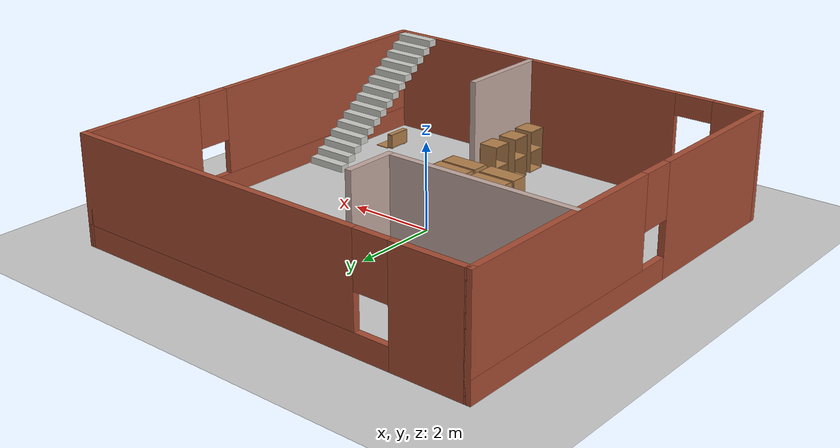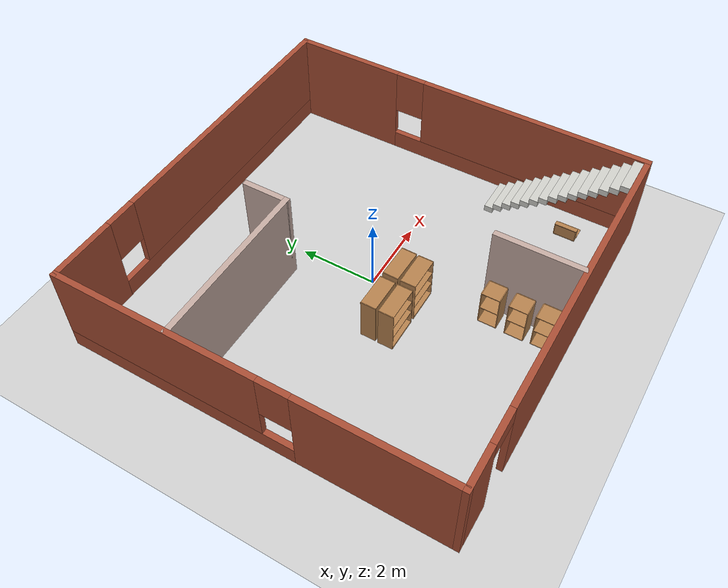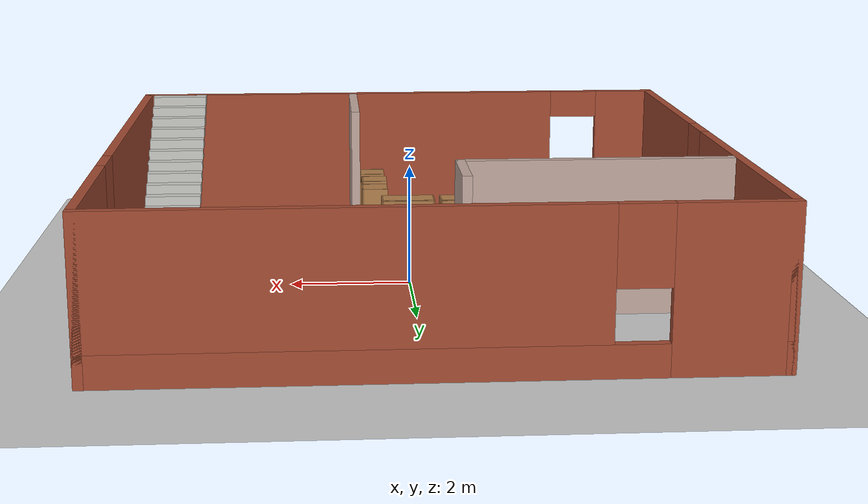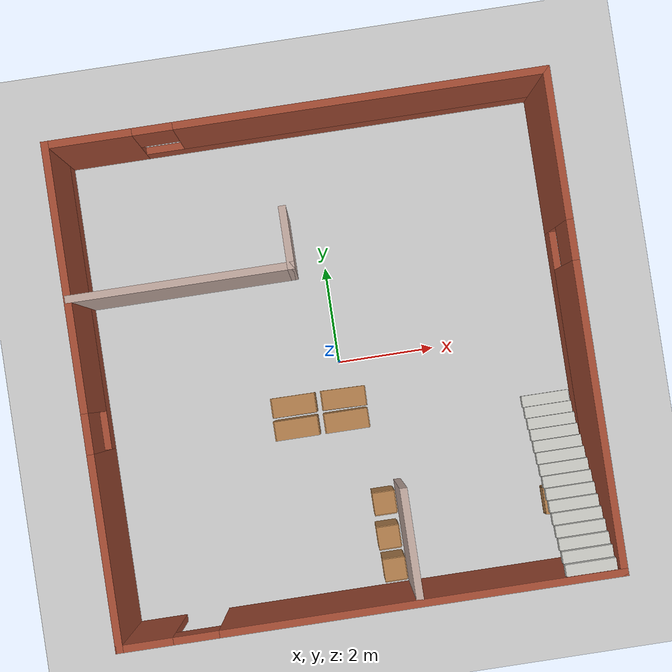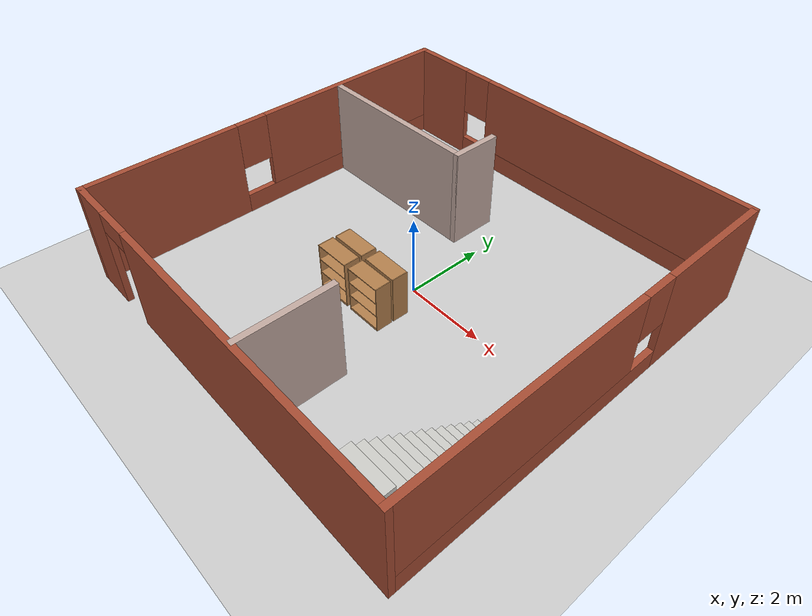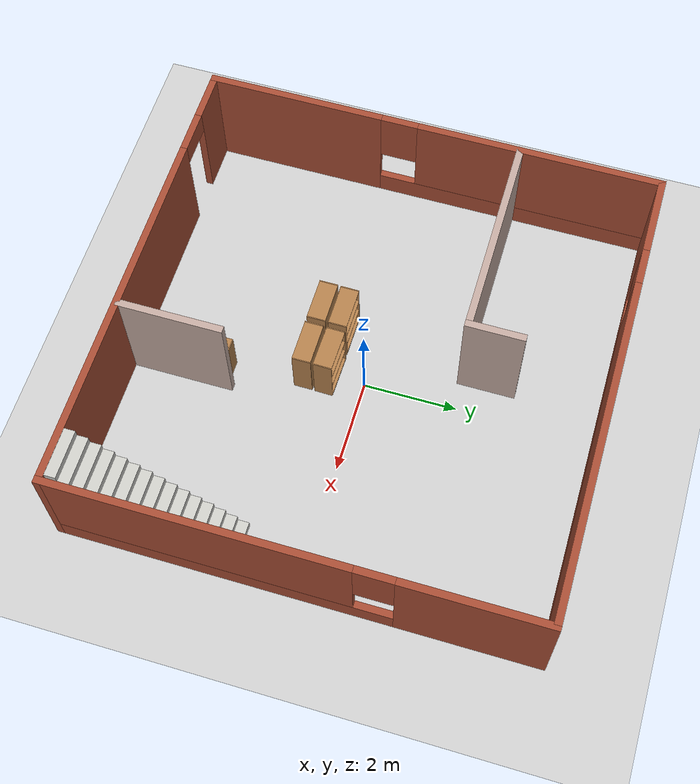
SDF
<sdf version="1.6">
 <world name="default">
  <light name="sun" type="directional">
   <pose>0 0 10 0 -0 0</pose>
   <diffuse>0.8 0.8 0.8 1</diffuse>
   <specular>0.1 0.1 0.1 1</specular>
   <attenuation>
    <range>1000</range>
    <constant>0.9</constant>
    <linear>0.01</linear>
    <quadratic>0.001</quadratic>
   </attenuation>
   <direction>-0.5 0.5 -1</direction>
  </light>
  <model name="ground_plane">
   <static>1</static>
   <link name="link">
    <collision name="collision">
     <geometry><plane><normal>0 0 1</normal><size>100 100</size></plane></geometry>
     <surface><friction><ode><mu>100</mu><mu2>50</mu2></ode></friction></surface>
    </collision>
    <visual name="visual">
     <cast_shadows>0</cast_shadows>
     <geometry><plane><normal>0 0 1</normal><size>100 100</size></plane></geometry>
     <material>
      <script><uri>file://media/materials/scripts/gazebo.material</uri><name>Gazebo/Grey</name></script>
     </material>
    </visual>
   </link>
  </model>
  <gravity>0 0 -9.8</gravity>
  <magnetic_field>6e-06 2.3e-05 -4.2e-05</magnetic_field>
  <atmosphere type="adiabatic"/>
  <physics name="default_physics" default="0" type="ode">
   <max_step_size>0.001</max_step_size>
   <real_time_factor>1</real_time_factor>
   <real_time_update_rate>1000</real_time_update_rate>
  </physics>
  <scene><ambient>0.4 0.4 0.4 1</ambient><background>0.7 0.7 0.7 1</background><shadows>1</shadows></scene>
  <spherical_coordinates>
   <surface_model>EARTH_WGS84</surface_model>
   <latitude_deg>0</latitude_deg>
   <longitude_deg>0</longitude_deg>
   <elevation>0</elevation>
   <heading_deg>0</heading_deg>
  </spherical_coordinates>
  <model name="house2">
   <pose>-0.118115 0.045752 0 0 -0 0</pose>
   <link name="Stairs_0">
    <visual name="Stairs_0_Visual_0">
     <pose>4.30411 -1.46435 0.083333 0 -0 0</pose>
     <geometry><box><size>1 0.233333 0.166667</size></box></geometry>
     <material>
      <script><uri>file://media/materials/scripts/gazebo.material</uri><name>Gazebo/CeilingTiled</name></script>
      <ambient>1 1 1 1</ambient>
     </material>
    </visual>
    <collision name="Stairs_0_Collision_0">
     <geometry><box><size>1 0.233333 0.166667</size></box></geometry>
     <pose>4.30411 -1.46435 0.083333 0 -0 0</pose>
    </collision>
    <visual name="Stairs_0_Visual_1">
     <pose>4.30411 -1.69768 0.25 0 -0 0</pose>
     <geometry><box><size>1 0.233333 0.166667</size></box></geometry>
     <material>
      <script><uri>file://media/materials/scripts/gazebo.material</uri><name>Gazebo/CeilingTiled</name></script>
      <ambient>1 1 1 1</ambient>
     </material>
    </visual>
    <collision name="Stairs_0_Collision_1">
     <geometry><box><size>1 0.233333 0.166667</size></box></geometry>
     <pose>4.30411 -1.69768 0.25 0 -0 0</pose>
    </collision>
    <visual name="Stairs_0_Visual_2">
     <pose>4.30411 -1.93101 0.416667 0 -0 0</pose>
     <geometry><box><size>1 0.233333 0.166667</size></box></geometry>
     <material>
      <script><uri>file://media/materials/scripts/gazebo.material</uri><name>Gazebo/CeilingTiled</name></script>
      <ambient>1 1 1 1</ambient>
     </material>
    </visual>
    <collision name="Stairs_0_Collision_2">
     <geometry><box><size>1 0.233333 0.166667</size></box></geometry>
     <pose>4.30411 -1.93101 0.416667 0 -0 0</pose>
    </collision>
    <visual name="Stairs_0_Visual_3">
     <pose>4.30411 -2.16435 0.583333 0 -0 0</pose>
     <geometry><box><size>1 0.233333 0.166667</size></box></geometry>
     <material>
      <script><uri>file://media/materials/scripts/gazebo.material</uri><name>Gazebo/CeilingTiled</name></script>
      <ambient>1 1 1 1</ambient>
     </material>
    </visual>
    <collision name="Stairs_0_Collision_3">
     <geometry><box><size>1 0.233333 0.166667</size></box></geometry>
     <pose>4.30411 -2.16435 0.583333 0 -0 0</pose>
    </collision>
    <visual name="Stairs_0_Visual_4">
     <pose>4.30411 -2.39768 0.75 0 -0 0</pose>
     <geometry><box><size>1 0.233333 0.166667</size></box></geometry>
     <material>
      <script><uri>file://media/materials/scripts/gazebo.material</uri><name>Gazebo/CeilingTiled</name></script>
      <ambient>1 1 1 1</ambient>
     </material>
    </visual>
    <collision name="Stairs_0_Collision_4">
     <geometry><box><size>1 0.233333 0.166667</size></box></geometry>
     <pose>4.30411 -2.39768 0.75 0 -0 0</pose>
    </collision>
    <visual name="Stairs_0_Visual_5">
     <pose>4.30411 -2.63102 0.916667 0 -0 0</pose>
     <geometry><box><size>1 0.233333 0.166667</size></box></geometry>
     <material>
      <script><uri>file://media/materials/scripts/gazebo.material</uri><name>Gazebo/CeilingTiled</name></script>
      <ambient>1 1 1 1</ambient>
     </material>
    </visual>
    <collision name="Stairs_0_Collision_5">
     <geometry><box><size>1 0.233333 0.166667</size></box></geometry>
     <pose>4.30411 -2.63102 0.916667 0 -0 0</pose>
    </collision>
    <visual name="Stairs_0_Visual_6">
     <pose>4.30411 -2.86435 1.08333 0 -0 0</pose>
     <geometry><box><size>1 0.233333 0.166667</size></box></geometry>
     <material>
      <script><uri>file://media/materials/scripts/gazebo.material</uri><name>Gazebo/CeilingTiled</name></script>
      <ambient>1 1 1 1</ambient>
     </material>
    </visual>
    <collision name="Stairs_0_Collision_6">
     <geometry><box><size>1 0.233333 0.166667</size></box></geometry>
     <pose>4.30411 -2.86435 1.08333 0 -0 0</pose>
    </collision>
    <visual name="Stairs_0_Visual_7">
     <pose>4.30411 -3.09768 1.25 0 -0 0</pose>
     <geometry><box><size>1 0.233333 0.166667</size></box></geometry>
     <material>
      <script><uri>file://media/materials/scripts/gazebo.material</uri><name>Gazebo/CeilingTiled</name></script>
      <ambient>1 1 1 1</ambient>
     </material>
    </visual>
    <collision name="Stairs_0_Collision_7">
     <geometry><box><size>1 0.233333 0.166667</size></box></geometry>
     <pose>4.30411 -3.09768 1.25 0 -0 0</pose>
    </collision>
    <visual name="Stairs_0_Visual_8">
     <pose>4.30411 -3.33102 1.41667 0 -0 0</pose>
     <geometry><box><size>1 0.233333 0.166667</size></box></geometry>
     <material>
      <script><uri>file://media/materials/scripts/gazebo.material</uri><name>Gazebo/CeilingTiled</name></script>
      <ambient>1 1 1 1</ambient>
     </material>
    </visual>
    <collision name="Stairs_0_Collision_8">
     <geometry><box><size>1 0.233333 0.166667</size></box></geometry>
     <pose>4.30411 -3.33102 1.41667 0 -0 0</pose>
    </collision>
    <visual name="Stairs_0_Visual_9">
     <pose>4.30411 -3.56435 1.58333 0 -0 0</pose>
     <geometry><box><size>1 0.233333 0.166667</size></box></geometry>
     <material>
      <script><uri>file://media/materials/scripts/gazebo.material</uri><name>Gazebo/CeilingTiled</name></script>
      <ambient>1 1 1 1</ambient>
     </material>
    </visual>
    <collision name="Stairs_0_Collision_9">
     <geometry><box><size>1 0.233333 0.166667</size></box></geometry>
     <pose>4.30411 -3.56435 1.58333 0 -0 0</pose>
    </collision>
    <visual name="Stairs_0_Visual_10">
     <pose>4.30411 -3.79768 1.75 0 -0 0</pose>
     <geometry><box><size>1 0.233333 0.166667</size></box></geometry>
     <material>
      <script><uri>file://media/materials/scripts/gazebo.material</uri><name>Gazebo/CeilingTiled</name></script>
      <ambient>1 1 1 1</ambient>
     </material>
    </visual>
    <collision name="Stairs_0_Collision_10">
     <geometry><box><size>1 0.233333 0.166667</size></box></geometry>
     <pose>4.30411 -3.79768 1.75 0 -0 0</pose>
    </collision>
    <visual name="Stairs_0_Visual_11">
     <pose>4.30411 -4.03102 1.91667 0 -0 0</pose>
     <geometry><box><size>1 0.233333 0.166667</size></box></geometry>
     <material>
      <script><uri>file://media/materials/scripts/gazebo.material</uri><name>Gazebo/CeilingTiled</name></script>
      <ambient>1 1 1 1</ambient>
     </material>
    </visual>
    <collision name="Stairs_0_Collision_11">
     <geometry><box><size>1 0.233333 0.166667</size></box></geometry>
     <pose>4.30411 -4.03102 1.91667 0 -0 0</pose>
    </collision>
    <visual name="Stairs_0_Visual_12">
     <pose>4.30411 -4.26435 2.08333 0 -0 0</pose>
     <geometry><box><size>1 0.233333 0.166667</size></box></geometry>
     <material>
      <script><uri>file://media/materials/scripts/gazebo.material</uri><name>Gazebo/CeilingTiled</name></script>
      <ambient>1 1 1 1</ambient>
     </material>
    </visual>
    <collision name="Stairs_0_Collision_12">
     <geometry><box><size>1 0.233333 0.166667</size></box></geometry>
     <pose>4.30411 -4.26435 2.08333 0 -0 0</pose>
    </collision>
    <visual name="Stairs_0_Visual_13">
     <pose>4.30411 -4.49768 2.25 0 -0 0</pose>
     <geometry><box><size>1 0.233333 0.166667</size></box></geometry>
     <material>
      <script><uri>file://media/materials/scripts/gazebo.material</uri><name>Gazebo/CeilingTiled</name></script>
      <ambient>1 1 1 1</ambient>
     </material>
    </visual>
    <collision name="Stairs_0_Collision_13">
     <geometry><box><size>1 0.233333 0.166667</size></box></geometry>
     <pose>4.30411 -4.49768 2.25 0 -0 0</pose>
    </collision>
    <visual name="Stairs_0_Visual_14">
     <pose>4.30411 -4.73102 2.41667 0 -0 0</pose>
     <geometry><box><size>1 0.233333 0.166667</size></box></geometry>
     <material>
      <script><uri>file://media/materials/scripts/gazebo.material</uri><name>Gazebo/CeilingTiled</name></script>
      <ambient>1 1 1 1</ambient>
     </material>
    </visual>
    <collision name="Stairs_0_Collision_14">
     <geometry><box><size>1 0.233333 0.166667</size></box></geometry>
     <pose>4.30411 -4.73102 2.41667 0 -0 0</pose>
    </collision>
   </link>
   <link name="Wall_1">
    <pose>-4.925 0 0 0 -0 1.5708</pose>
    <visual name="Wall_1_Visual_0">
     <pose>-3.06918 0 1.25 0 -0 0</pose>
     <geometry><box><size>3.86164 0.15 2.5</size></box></geometry>
     <material>
      <script><uri>file://media/materials/scripts/gazebo.material</uri><name>Gazebo/Bricks</name></script>
      <ambient>1 1 1 1</ambient>
     </material>
    </visual>
    <collision name="Wall_1_Collision_0">
     <geometry><box><size>3.86164 0.15 2.5</size></box></geometry>
     <pose>-3.06918 0 1.25 0 -0 0</pose>
    </collision>
    <visual name="Wall_1_Visual_1">
     <pose>1.93082 0 0.25 0 -0 0</pose>
     <geometry><box><size>6.13836 0.15 0.5</size></box></geometry>
     <material>
      <script><uri>file://media/materials/scripts/gazebo.material</uri><name>Gazebo/Bricks</name></script>
      <ambient>1 1 1 1</ambient>
     </material>
    </visual>
    <collision name="Wall_1_Collision_1">
     <geometry><box><size>6.13836 0.15 0.5</size></box></geometry>
     <pose>1.93082 0 0.25 0 -0 0</pose>
    </collision>
    <visual name="Wall_1_Visual_2">
     <pose>2.33082 0 1.5 0 -0 0</pose>
     <geometry><box><size>5.33836 0.15 2</size></box></geometry>
     <material>
      <script><uri>file://media/materials/scripts/gazebo.material</uri><name>Gazebo/Bricks</name></script>
      <ambient>1 1 1 1</ambient>
     </material>
    </visual>
    <collision name="Wall_1_Collision_2">
     <geometry><box><size>5.33836 0.15 2</size></box></geometry>
     <pose>2.33082 0 1.5 0 -0 0</pose>
    </collision>
    <visual name="Wall_1_Visual_3">
     <pose>-0.73836 0 1.9 0 -0 0</pose>
     <geometry><box><size>0.8 0.15 1.2</size></box></geometry>
     <material>
      <script><uri>file://media/materials/scripts/gazebo.material</uri><name>Gazebo/Bricks</name></script>
      <ambient>1 1 1 1</ambient>
     </material>
    </visual>
    <collision name="Wall_1_Collision_3">
     <geometry><box><size>0.8 0.15 1.2</size></box></geometry>
     <pose>-0.73836 0 1.9 0 -0 0</pose>
    </collision>
   </link>
   <link name="Wall_2">
    <pose>0 4.925 0 0 -0 0</pose>
    <visual name="Wall_2_Visual_0">
     <pose>-4.11006 0 1.25 0 -0 0</pose>
     <geometry><box><size>1.77988 0.15 2.5</size></box></geometry>
     <material>
      <script><uri>file://media/materials/scripts/gazebo.material</uri><name>Gazebo/Bricks</name></script>
      <ambient>1 1 1 1</ambient>
     </material>
    </visual>
    <collision name="Wall_2_Collision_0">
     <geometry><box><size>1.77988 0.15 2.5</size></box></geometry>
     <pose>-4.11006 0 1.25 0 -0 0</pose>
    </collision>
    <visual name="Wall_2_Visual_1">
     <pose>0.889943 0 0.25 0 -0 0</pose>
     <geometry><box><size>8.22011 0.15 0.5</size></box></geometry>
     <material>
      <script><uri>file://media/materials/scripts/gazebo.material</uri><name>Gazebo/Bricks</name></script>
      <ambient>1 1 1 1</ambient>
     </material>
    </visual>
    <collision name="Wall_2_Collision_1">
     <geometry><box><size>8.22011 0.15 0.5</size></box></geometry>
     <pose>0.889943 0 0.25 0 -0 0</pose>
    </collision>
    <visual name="Wall_2_Visual_2">
     <pose>1.28994 0 1.5 0 -0 0</pose>
     <geometry><box><size>7.42012 0.15 2</size></box></geometry>
     <material>
      <script><uri>file://media/materials/scripts/gazebo.material</uri><name>Gazebo/Bricks</name></script>
      <ambient>1 1 1 1</ambient>
     </material>
    </visual>
    <collision name="Wall_2_Collision_2">
     <geometry><box><size>7.42012 0.15 2</size></box></geometry>
     <pose>1.28994 0 1.5 0 -0 0</pose>
    </collision>
    <visual name="Wall_2_Visual_3">
     <pose>-2.82011 0 1.9 0 -0 0</pose>
     <geometry><box><size>0.8 0.15 1.2</size></box></geometry>
     <material>
      <script><uri>file://media/materials/scripts/gazebo.material</uri><name>Gazebo/Bricks</name></script>
      <ambient>1 1 1 1</ambient>
     </material>
    </visual>
    <collision name="Wall_2_Collision_3">
     <geometry><box><size>0.8 0.15 1.2</size></box></geometry>
     <pose>-2.82011 0 1.9 0 -0 0</pose>
    </collision>
   </link>
   <link name="Wall_3">
    <pose>4.925 0 0 0 0 -1.5708</pose>
    <visual name="Wall_3_Visual_0">
     <pose>-3.48735 0 1.25 0 -0 0</pose>
     <geometry><box><size>3.0253 0.15 2.5</size></box></geometry>
     <material>
      <script><uri>file://media/materials/scripts/gazebo.material</uri><name>Gazebo/Bricks</name></script>
      <ambient>1 1 1 1</ambient>
     </material>
    </visual>
    <collision name="Wall_3_Collision_0">
     <geometry><box><size>3.0253 0.15 2.5</size></box></geometry>
     <pose>-3.48735 0 1.25 0 -0 0</pose>
    </collision>
    <visual name="Wall_3_Visual_1">
     <pose>1.51265 0 0.25 0 -0 0</pose>
     <geometry><box><size>6.9747 0.15 0.5</size></box></geometry>
     <material>
      <script><uri>file://media/materials/scripts/gazebo.material</uri><name>Gazebo/Bricks</name></script>
      <ambient>1 1 1 1</ambient>
     </material>
    </visual>
    <collision name="Wall_3_Collision_1">
     <geometry><box><size>6.9747 0.15 0.5</size></box></geometry>
     <pose>1.51265 0 0.25 0 -0 0</pose>
    </collision>
    <visual name="Wall_3_Visual_2">
     <pose>1.91265 0 1.5 0 -0 0</pose>
     <geometry><box><size>6.1747 0.15 2</size></box></geometry>
     <material>
      <script><uri>file://media/materials/scripts/gazebo.material</uri><name>Gazebo/Bricks</name></script>
      <ambient>1 1 1 1</ambient>
     </material>
    </visual>
    <collision name="Wall_3_Collision_2">
     <geometry><box><size>6.1747 0.15 2</size></box></geometry>
     <pose>1.91265 0 1.5 0 -0 0</pose>
    </collision>
    <visual name="Wall_3_Visual_3">
     <pose>-1.5747 0 1.9 0 -0 0</pose>
     <geometry><box><size>0.8 0.15 1.2</size></box></geometry>
     <material>
      <script><uri>file://media/materials/scripts/gazebo.material</uri><name>Gazebo/Bricks</name></script>
      <ambient>1 1 1 1</ambient>
     </material>
    </visual>
    <collision name="Wall_3_Collision_3">
     <geometry><box><size>0.8 0.15 1.2</size></box></geometry>
     <pose>-1.5747 0 1.9 0 -0 0</pose>
    </collision>
   </link>
   <link name="Wall_4">
    <pose>0 -4.925 0 0 -0 3.14159</pose>
    <visual name="Wall_4_Visual_0">
     <pose>-1.01425 0 1.25 0 -0 0</pose>
     <geometry><box><size>7.97151 0.15 2.5</size></box></geometry>
     <material>
      <script><uri>file://media/materials/scripts/gazebo.material</uri><name>Gazebo/Bricks</name></script>
      <ambient>1 1 1 1</ambient>
     </material>
    </visual>
    <collision name="Wall_4_Collision_0">
     <geometry><box><size>7.97151 0.15 2.5</size></box></geometry>
     <pose>-1.01425 0 1.25 0 -0 0</pose>
    </collision>
    <visual name="Wall_4_Visual_1">
     <pose>4.43576 0 1.25 0 -0 0</pose>
     <geometry><box><size>1.12849 0.15 2.5</size></box></geometry>
     <material>
      <script><uri>file://media/materials/scripts/gazebo.material</uri><name>Gazebo/Bricks</name></script>
      <ambient>1 1 1 1</ambient>
     </material>
    </visual>
    <collision name="Wall_4_Collision_1">
     <geometry><box><size>1.12849 0.15 2.5</size></box></geometry>
     <pose>4.43576 0 1.25 0 -0 0</pose>
    </collision>
    <visual name="Wall_4_Visual_2">
     <pose>3.42151 0 2.25 0 -0 0</pose>
     <geometry><box><size>0.9 0.15 0.5</size></box></geometry>
     <material>
      <script><uri>file://media/materials/scripts/gazebo.material</uri><name>Gazebo/Bricks</name></script>
      <ambient>1 1 1 1</ambient>
     </material>
    </visual>
    <collision name="Wall_4_Collision_2">
     <geometry><box><size>0.9 0.15 0.5</size></box></geometry>
     <pose>3.42151 0 2.25 0 -0 0</pose>
    </collision>
   </link>
   <link name="Wall_6">
    <collision name="Wall_6_Collision">
     <geometry><box><size>4.5 0.15 2.5</size></box></geometry>
     <pose>0 0 1.25 0 -0 0</pose>
    </collision>
    <visual name="Wall_6_Visual">
     <pose>0 0 1.25 0 -0 0</pose>
     <geometry><box><size>4.5 0.15 2.5</size></box></geometry>
     <material>
      <script><uri>file://media/materials/scripts/gazebo.material</uri><name>Gazebo/Grey</name></script>
      <ambient>0.760784 0.662745 0.627451 1</ambient>
     </material>
    </visual>
    <pose>-2.72687 1.89853 0 0 -0 0</pose>
   </link>
   <link name="Wall_7">
    <collision name="Wall_7_Collision">
     <geometry><box><size>1.25 0.15 2.5</size></box></geometry>
     <pose>0 0 1.25 0 -0 0</pose>
    </collision>
    <visual name="Wall_7_Visual">
     <pose>0 0 1.25 0 -0 0</pose>
     <geometry><box><size>1.25 0.15 2.5</size></box></geometry>
     <material>
      <script><uri>file://media/materials/scripts/gazebo.material</uri><name>Gazebo/Grey</name></script>
      <ambient>0.760784 0.662745 0.627451 1</ambient>
     </material>
    </visual>
    <pose>-0.551869 2.44853 0 0 -0 1.5708</pose>
   </link>
   <link name="Wall_9">
    <collision name="Wall_9_Collision">
     <geometry><box><size>2.25 0.15 2.5</size></box></geometry>
     <pose>0 0 1.25 0 -0 0</pose>
    </collision>
    <visual name="Wall_9_Visual">
     <pose>0 0 1.25 0 -0 0</pose>
     <geometry><box><size>2.25 0.15 2.5</size></box></geometry>
     <material>
      <script><uri>file://media/materials/scripts/gazebo.material</uri><name>Gazebo/Grey</name></script>
      <ambient>0.760784 0.662745 0.627451 1</ambient>
     </material>
    </visual>
    <pose>0.950175 -3.80561 0 0 -0 1.5708</pose>
   </link>
   <static>1</static>
  </model>
  <model name="wooden_case">
   <link name="base">
    <pose>0 0 0.024 0 -0 0</pose>
    <inertial>
     <pose>-0.022184 0 0.171592 0 -0 0</pose>
     <mass>3.96264</mass>
     <inertia>
      <ixx>0.213536</ixx>
      <ixy>0</ixy>
      <ixz>0.000779377</ixz>
      <iyy>0.0708943</iyy>
      <iyz>0</iyz>
      <izz>0.154604</izz>
     </inertia>
    </inertial>
    <collision name="collision_back">
     <pose>-0.053975 0 0.1778 0 -0 0</pose>
     <geometry><box><size>0.01905 0.5461 0.3175</size></box></geometry>
     <surface>
      <contact>
       <poissons_ratio>0.347</poissons_ratio>
       <elastic_modulus>8.8e+09</elastic_modulus>
       <ode><kp>100000</kp><kd>100</kd><max_vel>100</max_vel><min_depth>0.001</min_depth></ode>
      </contact>
      <friction>
       <torsional>
        <coefficient>1</coefficient>
        <use_patch_radius>0</use_patch_radius>
        <surface_radius>0.01</surface_radius>
       </torsional>
      </friction>
     </surface>
    </collision>
    <visual name="visual_back">
     <pose>-0.053975 0 0.1778 0 -0 0</pose>
     <geometry><box><size>0.01905 0.5461 0.3175</size></box></geometry>
     <material>
      <script><uri>file://media/materials/scripts/gazebo.material</uri><name>Gazebo/Wood</name></script>
     </material>
    </visual>
    <collision name="collision_bottom">
     <pose>0 0 0.009525 0 -0 0</pose>
     <geometry><box><size>0.127 0.5842 0.01905</size></box></geometry>
     <surface>
      <contact>
       <poissons_ratio>0.347</poissons_ratio>
       <elastic_modulus>8.8e+09</elastic_modulus>
       <ode><kp>100000</kp><kd>100</kd><max_vel>100</max_vel><min_depth>0.001</min_depth></ode>
      </contact>
      <friction>
       <torsional>
        <coefficient>1</coefficient>
        <use_patch_radius>0</use_patch_radius>
        <surface_radius>0.01</surface_radius>
       </torsional>
      </friction>
     </surface>
    </collision>
    <visual name="visual_bottom">
     <pose>0 0 0.009525 0 -0 0</pose>
     <geometry><box><size>0.127 0.5842 0.01905</size></box></geometry>
     <material>
      <script><uri>file://media/materials/scripts/gazebo.material</uri><name>Gazebo/Wood</name></script>
     </material>
    </visual>
    <collision name="collision_top">
     <pose>0 0 0.346075 0 -0 0</pose>
     <geometry><box><size>0.127 0.5842 0.01905</size></box></geometry>
     <surface>
      <contact>
       <poissons_ratio>0.347</poissons_ratio>
       <elastic_modulus>8.8e+09</elastic_modulus>
       <ode><kp>100000</kp><kd>100</kd><max_vel>100</max_vel><min_depth>0.001</min_depth></ode>
      </contact>
      <friction>
       <torsional>
        <coefficient>1</coefficient>
        <use_patch_radius>0</use_patch_radius>
        <surface_radius>0.01</surface_radius>
       </torsional>
      </friction>
     </surface>
    </collision>
    <visual name="visual_top">
     <pose>0 0 0.346075 0 -0 0</pose>
     <geometry><box><size>0.127 0.5842 0.01905</size></box></geometry>
     <material>
      <script><uri>file://media/materials/scripts/gazebo.material</uri><name>Gazebo/Wood</name></script>
     </material>
    </visual>
    <collision name="collision_left">
     <pose>0 -0.282575 0.1778 0 -0 0</pose>
     <geometry><box><size>0.127 0.01905 0.3175</size></box></geometry>
     <surface>
      <contact>
       <poissons_ratio>0.347</poissons_ratio>
       <elastic_modulus>8.8e+09</elastic_modulus>
       <ode><kp>100000</kp><kd>100</kd><max_vel>100</max_vel><min_depth>0.001</min_depth></ode>
      </contact>
      <friction>
       <torsional>
        <coefficient>1</coefficient>
        <use_patch_radius>0</use_patch_radius>
        <surface_radius>0.01</surface_radius>
       </torsional>
      </friction>
     </surface>
    </collision>
    <visual name="visual_left">
     <pose>0 -0.282575 0.1778 0 -0 0</pose>
     <geometry><box><size>0.127 0.01905 0.3175</size></box></geometry>
     <material>
      <script><uri>file://media/materials/scripts/gazebo.material</uri><name>Gazebo/Wood</name></script>
     </material>
    </visual>
    <collision name="collision_right">
     <pose>0 0.282575 0.1778 0 -0 0</pose>
     <geometry><box><size>0.127 0.01905 0.3175</size></box></geometry>
     <surface>
      <contact>
       <poissons_ratio>0.347</poissons_ratio>
       <elastic_modulus>8.8e+09</elastic_modulus>
       <ode><kp>100000</kp><kd>100</kd><max_vel>100</max_vel><min_depth>0.001</min_depth></ode>
      </contact>
      <friction>
       <torsional>
        <coefficient>1</coefficient>
        <use_patch_radius>0</use_patch_radius>
        <surface_radius>0.01</surface_radius>
       </torsional>
      </friction>
     </surface>
    </collision>
    <visual name="visual_right">
     <pose>0 0.282575 0.1778 0 -0 0</pose>
     <geometry><box><size>0.127 0.01905 0.3175</size></box></geometry>
     <material>
      <script><uri>file://media/materials/scripts/gazebo.material</uri><name>Gazebo/Wood</name></script>
     </material>
    </visual>
    <collision name="collision_block_left">
     <pose>0.0095 -0.2151 -0.012 0 -0 0</pose>
     <geometry><box><size>0.108 0.05 0.024</size></box></geometry>
     <surface>
      <contact>
       <poissons_ratio>0.347</poissons_ratio>
       <elastic_modulus>8.8e+09</elastic_modulus>
       <ode><kp>100000</kp><kd>100</kd><max_vel>100</max_vel><min_depth>0.001</min_depth></ode>
      </contact>
      <friction>
       <torsional>
        <coefficient>1</coefficient>
        <use_patch_radius>0</use_patch_radius>
        <surface_radius>0.01</surface_radius>
       </torsional>
      </friction>
     </surface>
    </collision>
    <visual name="visual_block_left">
     <pose>0.0095 -0.2151 -0.012 0 -0 0</pose>
     <geometry><box><size>0.108 0.05 0.024</size></box></geometry>
     <material>
      <script><uri>file://media/materials/scripts/gazebo.material</uri><name>Gazebo/Wood</name></script>
     </material>
    </visual>
    <collision name="collision_block_right">
     <pose>0.0095 0.2151 -0.012 0 -0 0</pose>
     <geometry><box><size>0.108 0.05 0.024</size></box></geometry>
     <surface>
      <contact>
       <poissons_ratio>0.347</poissons_ratio>
       <elastic_modulus>8.8e+09</elastic_modulus>
       <ode><kp>100000</kp><kd>100</kd><max_vel>100</max_vel><min_depth>0.001</min_depth></ode>
      </contact>
      <friction>
       <torsional>
        <coefficient>1</coefficient>
        <use_patch_radius>0</use_patch_radius>
        <surface_radius>0.01</surface_radius>
       </torsional>
      </friction>
     </surface>
    </collision>
    <visual name="visual_block_right">
     <pose>0.0095 0.2151 -0.012 0 -0 0</pose>
     <geometry><box><size>0.108 0.05 0.024</size></box></geometry>
     <material>
      <script><uri>file://media/materials/scripts/gazebo.material</uri><name>Gazebo/Wood</name></script>
     </material>
    </visual>
   </link>
   <link name="lid">
    <pose>0.243775 0 0.009525 0 -0 0</pose>
    <inertial>
     <mass>1.97874</mass>
     <inertia>
      <ixx>0.0563367</ixx>
      <ixy>0</ixy>
      <ixz>0</ixz>
      <iyy>0.020911</iyy>
      <iyz>0</iyz>
      <izz>0.0771281</izz>
     </inertia>
    </inertial>
    <collision name="collision">
     <geometry><box><size>0.3556 0.5842 0.01905</size></box></geometry>
     <surface>
      <contact>
       <poissons_ratio>0.347</poissons_ratio>
       <elastic_modulus>8.8e+09</elastic_modulus>
       <ode><kp>100000</kp><kd>100</kd><max_vel>100</max_vel><min_depth>0.001</min_depth></ode>
      </contact>
      <friction>
       <torsional>
        <coefficient>1</coefficient>
        <use_patch_radius>0</use_patch_radius>
        <surface_radius>0.01</surface_radius>
       </torsional>
      </friction>
     </surface>
    </collision>
    <visual name="visual">
     <geometry><box><size>0.3556 0.5842 0.01905</size></box></geometry>
     <material>
      <script><uri>file://media/materials/scripts/gazebo.material</uri><name>Gazebo/Wood</name></script>
     </material>
    </visual>
    <visual name="tee_nut_1">
     <pose>0.122 -0.216 0 0 -0 0</pose>
     <geometry><cylinder><radius>0.00635</radius><length>0.0192405</length></cylinder></geometry>
     <material>
      <script><uri>file://media/materials/scripts/gazebo.material</uri><name>Gazebo/Grey</name></script>
     </material>
    </visual>
    <visual name="tee_nut_2">
     <pose>0.122 -0.088 0 0 -0 0</pose>
     <geometry><cylinder><radius>0.00635</radius><length>0.0192405</length></cylinder></geometry>
     <material>
      <script><uri>file://media/materials/scripts/gazebo.material</uri><name>Gazebo/Grey</name></script>
     </material>
    </visual>
    <visual name="tee_nut_3">
     <pose>0.122 0.088 0 0 -0 0</pose>
     <geometry><cylinder><radius>0.00635</radius><length>0.0192405</length></cylinder></geometry>
     <material>
      <script><uri>file://media/materials/scripts/gazebo.material</uri><name>Gazebo/Grey</name></script>
     </material>
    </visual>
    <visual name="tee_nut_4">
     <pose>0.122 0.216 0 0 -0 0</pose>
     <geometry><cylinder><radius>0.00635</radius><length>0.0192405</length></cylinder></geometry>
     <material>
      <script><uri>file://media/materials/scripts/gazebo.material</uri><name>Gazebo/Grey</name></script>
     </material>
    </visual>
   </link>
   <joint name="lid_hinge" type="revolute">
    <pose>-0.1778 0 0.01905 0 -0 0</pose>
    <parent>base</parent>
    <child>lid</child>
    <axis>
     <xyz>0 1 0</xyz>
     <limit><upper>0.523599</upper><lower>-1.5708</lower></limit>
     <use_parent_model_frame>0</use_parent_model_frame>
     <dynamics><spring_reference>0</spring_reference><spring_stiffness>0</spring_stiffness></dynamics>
    </axis>
   </joint>
   <pose>3.86254 -3.52396 -0.001057 0 -0.000428 -1e-06</pose>
  </model>
  <model name="cabinet">
   <static>1</static>
   <link name="cabinet_bottom_plate">
    <inertial>
     <pose>0 0 -1 0 -0 0</pose>
     <inertia><ixx>2.05</ixx><ixy>0</ixy><ixz>0</ixz><iyy>2.05</iyy><iyz>0</iyz><izz>2.05</izz></inertia>
     <mass>25</mass>
    </inertial>
    <collision name="cabinet_bottom_plate_geom">
     <pose>0 0 0.01 0 -0 0</pose>
     <geometry><box><size>0.45 0.45 0.02</size></box></geometry>
    </collision>
    <visual name="cabinet_bottom_plate_geom_visual">
     <pose>0 0 0.01 0 -0 0</pose>
     <geometry><box><size>0.45 0.45 0.02</size></box></geometry>
     <material>
      <script><uri>file://media/materials/scripts/gazebo.material</uri><name>Gazebo/Wood</name></script>
     </material>
    </visual>
    <collision name="cabinet_bottom_plate_geom_cabinet_back_plate">
     <pose>0.235 0 0.51 0 -0 0</pose>
     <geometry><box><size>0.02 0.45 1.02</size></box></geometry>
    </collision>
    <visual name="cabinet_bottom_plate_geom_cabinet_back_plate_visual">
     <pose>0.235 0 0.51 0 -0 0</pose>
     <geometry><box><size>0.02 0.45 1.02</size></box></geometry>
     <material>
      <script><uri>file://media/materials/scripts/gazebo.material</uri><name>Gazebo/Wood</name></script>
     </material>
    </visual>
    <collision name="cabinet_bottom_plate_geom_cabinet_left_plate">
     <pose>0 0.235 0.51 0 -0 0</pose>
     <geometry><box><size>0.45 0.02 1.02</size></box></geometry>
    </collision>
    <visual name="cabinet_bottom_plate_geom_cabinet_left_plate_visual">
     <pose>0 0.235 0.51 0 -0 0</pose>
     <geometry><box><size>0.45 0.02 1.02</size></box></geometry>
     <material>
      <script><uri>file://media/materials/scripts/gazebo.material</uri><name>Gazebo/Wood</name></script>
     </material>
    </visual>
    <collision name="cabinet_bottom_plate_geom_cabinet_middle_plate">
     <pose>0 0 0.51 0 -0 0</pose>
     <geometry><box><size>0.45 0.45 0.02</size></box></geometry>
    </collision>
    <visual name="cabinet_bottom_plate_geom_cabinet_middle_plate_visual">
     <pose>0 0 0.51 0 -0 0</pose>
     <geometry><box><size>0.45 0.45 0.02</size></box></geometry>
     <material>
      <script><uri>file://media/materials/scripts/gazebo.material</uri><name>Gazebo/Wood</name></script>
     </material>
    </visual>
    <collision name="cabinet_bottom_plate_geom_cabinet_right_plate">
     <pose>0 -0.235 0.51 0 -0 0</pose>
     <geometry><box><size>0.45 0.02 1.02</size></box></geometry>
    </collision>
    <visual name="cabinet_bottom_plate_geom_cabinet_right_plate_visual">
     <pose>0 -0.235 0.51 0 -0 0</pose>
     <geometry><box><size>0.45 0.02 1.02</size></box></geometry>
     <material>
      <script><uri>file://media/materials/scripts/gazebo.material</uri><name>Gazebo/Wood</name></script>
     </material>
    </visual>
    <collision name="cabinet_bottom_plate_geom_cabinet_top_plate">
     <pose>0 0 1.01 0 -0 0</pose>
     <geometry><box><size>0.45 0.45 0.02</size></box></geometry>
    </collision>
    <visual name="cabinet_bottom_plate_geom_cabinet_top_plate_visual">
     <pose>0 0 1.01 0 -0 0</pose>
     <geometry><box><size>0.45 0.45 0.02</size></box></geometry>
     <material>
      <script><uri>file://media/materials/scripts/gazebo.material</uri><name>Gazebo/Wood</name></script>
     </material>
    </visual>
   </link>
   <pose>0.475612 -4.36972 0 0 -0 0</pose>
  </model>
  <model name="cabinet_clone">
   <static>1</static>
   <link name="cabinet_bottom_plate">
    <inertial>
     <pose>0 0 -1 0 -0 0</pose>
     <inertia><ixx>2.05</ixx><ixy>0</ixy><ixz>0</ixz><iyy>2.05</iyy><iyz>0</iyz><izz>2.05</izz></inertia>
     <mass>25</mass>
    </inertial>
    <collision name="cabinet_bottom_plate_geom">
     <pose>0 0 0.01 0 -0 0</pose>
     <geometry><box><size>0.45 0.45 0.02</size></box></geometry>
    </collision>
    <visual name="cabinet_bottom_plate_geom_visual">
     <pose>0 0 0.01 0 -0 0</pose>
     <geometry><box><size>0.45 0.45 0.02</size></box></geometry>
     <material>
      <script><uri>file://media/materials/scripts/gazebo.material</uri><name>Gazebo/Wood</name></script>
     </material>
    </visual>
    <collision name="cabinet_bottom_plate_geom_cabinet_back_plate">
     <pose>0.235 0 0.51 0 -0 0</pose>
     <geometry><box><size>0.02 0.45 1.02</size></box></geometry>
    </collision>
    <visual name="cabinet_bottom_plate_geom_cabinet_back_plate_visual">
     <pose>0.235 0 0.51 0 -0 0</pose>
     <geometry><box><size>0.02 0.45 1.02</size></box></geometry>
     <material>
      <script><uri>file://media/materials/scripts/gazebo.material</uri><name>Gazebo/Wood</name></script>
     </material>
    </visual>
    <collision name="cabinet_bottom_plate_geom_cabinet_left_plate">
     <pose>0 0.235 0.51 0 -0 0</pose>
     <geometry><box><size>0.45 0.02 1.02</size></box></geometry>
    </collision>
    <visual name="cabinet_bottom_plate_geom_cabinet_left_plate_visual">
     <pose>0 0.235 0.51 0 -0 0</pose>
     <geometry><box><size>0.45 0.02 1.02</size></box></geometry>
     <material>
      <script><uri>file://media/materials/scripts/gazebo.material</uri><name>Gazebo/Wood</name></script>
     </material>
    </visual>
    <collision name="cabinet_bottom_plate_geom_cabinet_middle_plate">
     <pose>0 0 0.51 0 -0 0</pose>
     <geometry><box><size>0.45 0.45 0.02</size></box></geometry>
    </collision>
    <visual name="cabinet_bottom_plate_geom_cabinet_middle_plate_visual">
     <pose>0 0 0.51 0 -0 0</pose>
     <geometry><box><size>0.45 0.45 0.02</size></box></geometry>
     <material>
      <script><uri>file://media/materials/scripts/gazebo.material</uri><name>Gazebo/Wood</name></script>
     </material>
    </visual>
    <collision name="cabinet_bottom_plate_geom_cabinet_right_plate">
     <pose>0 -0.235 0.51 0 -0 0</pose>
     <geometry><box><size>0.45 0.02 1.02</size></box></geometry>
    </collision>
    <visual name="cabinet_bottom_plate_geom_cabinet_right_plate_visual">
     <pose>0 -0.235 0.51 0 -0 0</pose>
     <geometry><box><size>0.45 0.02 1.02</size></box></geometry>
     <material>
      <script><uri>file://media/materials/scripts/gazebo.material</uri><name>Gazebo/Wood</name></script>
     </material>
    </visual>
    <collision name="cabinet_bottom_plate_geom_cabinet_top_plate">
     <pose>0 0 1.01 0 -0 0</pose>
     <geometry><box><size>0.45 0.45 0.02</size></box></geometry>
    </collision>
    <visual name="cabinet_bottom_plate_geom_cabinet_top_plate_visual">
     <pose>0 0 1.01 0 -0 0</pose>
     <geometry><box><size>0.45 0.45 0.02</size></box></geometry>
     <material>
      <script><uri>file://media/materials/scripts/gazebo.material</uri><name>Gazebo/Wood</name></script>
     </material>
    </visual>
   </link>
   <pose>0.450458 -3.70741 0 0 -0 0</pose>
  </model>
  <model name="cabinet_clone_0">
   <static>1</static>
   <link name="cabinet_bottom_plate">
    <inertial>
     <pose>0 0 -1 0 -0 0</pose>
     <inertia><ixx>2.05</ixx><ixy>0</ixy><ixz>0</ixz><iyy>2.05</iyy><iyz>0</iyz><izz>2.05</izz></inertia>
     <mass>25</mass>
    </inertial>
    <collision name="cabinet_bottom_plate_geom">
     <pose>0 0 0.01 0 -0 0</pose>
     <geometry><box><size>0.45 0.45 0.02</size></box></geometry>
    </collision>
    <visual name="cabinet_bottom_plate_geom_visual">
     <pose>0 0 0.01 0 -0 0</pose>
     <geometry><box><size>0.45 0.45 0.02</size></box></geometry>
     <material>
      <script><uri>file://media/materials/scripts/gazebo.material</uri><name>Gazebo/Wood</name></script>
     </material>
    </visual>
    <collision name="cabinet_bottom_plate_geom_cabinet_back_plate">
     <pose>0.235 0 0.51 0 -0 0</pose>
     <geometry><box><size>0.02 0.45 1.02</size></box></geometry>
    </collision>
    <visual name="cabinet_bottom_plate_geom_cabinet_back_plate_visual">
     <pose>0.235 0 0.51 0 -0 0</pose>
     <geometry><box><size>0.02 0.45 1.02</size></box></geometry>
     <material>
      <script><uri>file://media/materials/scripts/gazebo.material</uri><name>Gazebo/Wood</name></script>
     </material>
    </visual>
    <collision name="cabinet_bottom_plate_geom_cabinet_left_plate">
     <pose>0 0.235 0.51 0 -0 0</pose>
     <geometry><box><size>0.45 0.02 1.02</size></box></geometry>
    </collision>
    <visual name="cabinet_bottom_plate_geom_cabinet_left_plate_visual">
     <pose>0 0.235 0.51 0 -0 0</pose>
     <geometry><box><size>0.45 0.02 1.02</size></box></geometry>
     <material>
      <script><uri>file://media/materials/scripts/gazebo.material</uri><name>Gazebo/Wood</name></script>
     </material>
    </visual>
    <collision name="cabinet_bottom_plate_geom_cabinet_middle_plate">
     <pose>0 0 0.51 0 -0 0</pose>
     <geometry><box><size>0.45 0.45 0.02</size></box></geometry>
    </collision>
    <visual name="cabinet_bottom_plate_geom_cabinet_middle_plate_visual">
     <pose>0 0 0.51 0 -0 0</pose>
     <geometry><box><size>0.45 0.45 0.02</size></box></geometry>
     <material>
      <script><uri>file://media/materials/scripts/gazebo.material</uri><name>Gazebo/Wood</name></script>
     </material>
    </visual>
    <collision name="cabinet_bottom_plate_geom_cabinet_right_plate">
     <pose>0 -0.235 0.51 0 -0 0</pose>
     <geometry><box><size>0.45 0.02 1.02</size></box></geometry>
    </collision>
    <visual name="cabinet_bottom_plate_geom_cabinet_right_plate_visual">
     <pose>0 -0.235 0.51 0 -0 0</pose>
     <geometry><box><size>0.45 0.02 1.02</size></box></geometry>
     <material>
      <script><uri>file://media/materials/scripts/gazebo.material</uri><name>Gazebo/Wood</name></script>
     </material>
    </visual>
    <collision name="cabinet_bottom_plate_geom_cabinet_top_plate">
     <pose>0 0 1.01 0 -0 0</pose>
     <geometry><box><size>0.45 0.45 0.02</size></box></geometry>
    </collision>
    <visual name="cabinet_bottom_plate_geom_cabinet_top_plate_visual">
     <pose>0 0 1.01 0 -0 0</pose>
     <geometry><box><size>0.45 0.45 0.02</size></box></geometry>
     <material>
      <script><uri>file://media/materials/scripts/gazebo.material</uri><name>Gazebo/Wood</name></script>
     </material>
    </visual>
   </link>
   <pose>0.469676 -3.00346 0 0 -0 0</pose>
  </model>
  <model name="bookshelf">
   <static>1</static>
   <link name="link">
    <inertial><mass>1</mass></inertial>
    <collision name="back">
     <pose>0 0.005 0.6 0 -0 0</pose>
     <geometry><box><size>0.9 0.01 1.2</size></box></geometry>
    </collision>
    <visual name="visual1">
     <pose>0 0.005 0.6 0 -0 0</pose>
     <geometry><box><size>0.9 0.01 1.2</size></box></geometry>
     <material>
      <script><uri>file://media/materials/scripts/gazebo.material</uri><name>Gazebo/Wood</name></script>
     </material>
    </visual>
    <collision name="left_side">
     <pose>0.45 -0.195 0.6 0 -0 0</pose>
     <geometry><box><size>0.02 0.4 1.2</size></box></geometry>
    </collision>
    <visual name="visual2">
     <pose>0.45 -0.195 0.6 0 -0 0</pose>
     <geometry><box><size>0.02 0.4 1.2</size></box></geometry>
     <material>
      <script><uri>file://media/materials/scripts/gazebo.material</uri><name>Gazebo/Wood</name></script>
     </material>
    </visual>
    <collision name="right_side">
     <pose>-0.45 -0.195 0.6 0 -0 0</pose>
     <geometry><box><size>0.02 0.4 1.2</size></box></geometry>
    </collision>
    <visual name="visual3">
     <pose>-0.45 -0.195 0.6 0 -0 0</pose>
     <geometry><box><size>0.02 0.4 1.2</size></box></geometry>
     <material>
      <script><uri>file://media/materials/scripts/gazebo.material</uri><name>Gazebo/Wood</name></script>
     </material>
    </visual>
    <collision name="bottom">
     <pose>0 -0.195 0.03 0 -0 0</pose>
     <geometry><box><size>0.88 0.4 0.06</size></box></geometry>
    </collision>
    <visual name="visual4">
     <pose>0 -0.195 0.03 0 -0 0</pose>
     <geometry><box><size>0.88 0.4 0.06</size></box></geometry>
     <material>
      <script><uri>file://media/materials/scripts/gazebo.material</uri><name>Gazebo/Wood</name></script>
     </material>
    </visual>
    <collision name="top">
     <pose>0 -0.195 1.19 0 -0 0</pose>
     <geometry><box><size>0.88 0.4 0.02</size></box></geometry>
    </collision>
    <visual name="visual5">
     <pose>0 -0.195 1.19 0 -0 0</pose>
     <geometry><box><size>0.88 0.4 0.02</size></box></geometry>
     <material>
      <script><uri>file://media/materials/scripts/gazebo.material</uri><name>Gazebo/Wood</name></script>
     </material>
    </visual>
    <collision name="low_shelf">
     <pose>0 -0.195 0.43 0 -0 0</pose>
     <geometry><box><size>0.88 0.4 0.02</size></box></geometry>
    </collision>
    <visual name="visual6">
     <pose>0 -0.195 0.43 0 -0 0</pose>
     <geometry><box><size>0.88 0.4 0.02</size></box></geometry>
     <material>
      <script><uri>file://media/materials/scripts/gazebo.material</uri><name>Gazebo/Wood</name></script>
     </material>
    </visual>
    <collision name="high_shelf">
     <pose>0 -0.195 0.8 0 -0 0</pose>
     <geometry><box><size>0.88 0.4 0.02</size></box></geometry>
    </collision>
    <visual name="visual7">
     <pose>0 -0.195 0.8 0 -0 0</pose>
     <geometry><box><size>0.88 0.4 0.02</size></box></geometry>
     <material>
      <script><uri>file://media/materials/scripts/gazebo.material</uri><name>Gazebo/Wood</name></script>
     </material>
    </visual>
   </link>
   <pose>-0.044604 -1.02827 0 0 -0 0</pose>
  </model>
  <model name="bookshelf_clone">
   <static>1</static>
   <link name="link">
    <inertial><mass>1</mass></inertial>
    <collision name="back">
     <pose>0 0.005 0.6 0 -0 0</pose>
     <geometry><box><size>0.9 0.01 1.2</size></box></geometry>
    </collision>
    <visual name="visual1">
     <pose>0 0.005 0.6 0 -0 0</pose>
     <geometry><box><size>0.9 0.01 1.2</size></box></geometry>
     <material>
      <script><uri>file://media/materials/scripts/gazebo.material</uri><name>Gazebo/Wood</name></script>
     </material>
    </visual>
    <collision name="left_side">
     <pose>0.45 -0.195 0.6 0 -0 0</pose>
     <geometry><box><size>0.02 0.4 1.2</size></box></geometry>
    </collision>
    <visual name="visual2">
     <pose>0.45 -0.195 0.6 0 -0 0</pose>
     <geometry><box><size>0.02 0.4 1.2</size></box></geometry>
     <material>
      <script><uri>file://media/materials/scripts/gazebo.material</uri><name>Gazebo/Wood</name></script>
     </material>
    </visual>
    <collision name="right_side">
     <pose>-0.45 -0.195 0.6 0 -0 0</pose>
     <geometry><box><size>0.02 0.4 1.2</size></box></geometry>
    </collision>
    <visual name="visual3">
     <pose>-0.45 -0.195 0.6 0 -0 0</pose>
     <geometry><box><size>0.02 0.4 1.2</size></box></geometry>
     <material>
      <script><uri>file://media/materials/scripts/gazebo.material</uri><name>Gazebo/Wood</name></script>
     </material>
    </visual>
    <collision name="bottom">
     <pose>0 -0.195 0.03 0 -0 0</pose>
     <geometry><box><size>0.88 0.4 0.06</size></box></geometry>
    </collision>
    <visual name="visual4">
     <pose>0 -0.195 0.03 0 -0 0</pose>
     <geometry><box><size>0.88 0.4 0.06</size></box></geometry>
     <material>
      <script><uri>file://media/materials/scripts/gazebo.material</uri><name>Gazebo/Wood</name></script>
     </material>
    </visual>
    <collision name="top">
     <pose>0 -0.195 1.19 0 -0 0</pose>
     <geometry><box><size>0.88 0.4 0.02</size></box></geometry>
    </collision>
    <visual name="visual5">
     <pose>0 -0.195 1.19 0 -0 0</pose>
     <geometry><box><size>0.88 0.4 0.02</size></box></geometry>
     <material>
      <script><uri>file://media/materials/scripts/gazebo.material</uri><name>Gazebo/Wood</name></script>
     </material>
    </visual>
    <collision name="low_shelf">
     <pose>0 -0.195 0.43 0 -0 0</pose>
     <geometry><box><size>0.88 0.4 0.02</size></box></geometry>
    </collision>
    <visual name="visual6">
     <pose>0 -0.195 0.43 0 -0 0</pose>
     <geometry><box><size>0.88 0.4 0.02</size></box></geometry>
     <material>
      <script><uri>file://media/materials/scripts/gazebo.material</uri><name>Gazebo/Wood</name></script>
     </material>
    </visual>
    <collision name="high_shelf">
     <pose>0 -0.195 0.8 0 -0 0</pose>
     <geometry><box><size>0.88 0.4 0.02</size></box></geometry>
    </collision>
    <visual name="visual7">
     <pose>0 -0.195 0.8 0 -0 0</pose>
     <geometry><box><size>0.88 0.4 0.02</size></box></geometry>
     <material>
      <script><uri>file://media/materials/scripts/gazebo.material</uri><name>Gazebo/Wood</name></script>
     </material>
    </visual>
   </link>
   <pose>-1.07049 -1.02952 0 0 -0 0</pose>
  </model>
  <model name="bookshelf_clone_0">
   <static>1</static>
   <link name="link">
    <inertial><mass>1</mass></inertial>
    <collision name="back">
     <pose>0 0.005 0.6 0 -0 0</pose>
     <geometry><box><size>0.9 0.01 1.2</size></box></geometry>
    </collision>
    <visual name="visual1">
     <pose>0 0.005 0.6 0 -0 0</pose>
     <geometry><box><size>0.9 0.01 1.2</size></box></geometry>
     <material>
      <script><uri>file://media/materials/scripts/gazebo.material</uri><name>Gazebo/Wood</name></script>
     </material>
    </visual>
    <collision name="left_side">
     <pose>0.45 -0.195 0.6 0 -0 0</pose>
     <geometry><box><size>0.02 0.4 1.2</size></box></geometry>
    </collision>
    <visual name="visual2">
     <pose>0.45 -0.195 0.6 0 -0 0</pose>
     <geometry><box><size>0.02 0.4 1.2</size></box></geometry>
     <material>
      <script><uri>file://media/materials/scripts/gazebo.material</uri><name>Gazebo/Wood</name></script>
     </material>
    </visual>
    <collision name="right_side">
     <pose>-0.45 -0.195 0.6 0 -0 0</pose>
     <geometry><box><size>0.02 0.4 1.2</size></box></geometry>
    </collision>
    <visual name="visual3">
     <pose>-0.45 -0.195 0.6 0 -0 0</pose>
     <geometry><box><size>0.02 0.4 1.2</size></box></geometry>
     <material>
      <script><uri>file://media/materials/scripts/gazebo.material</uri><name>Gazebo/Wood</name></script>
     </material>
    </visual>
    <collision name="bottom">
     <pose>0 -0.195 0.03 0 -0 0</pose>
     <geometry><box><size>0.88 0.4 0.06</size></box></geometry>
    </collision>
    <visual name="visual4">
     <pose>0 -0.195 0.03 0 -0 0</pose>
     <geometry><box><size>0.88 0.4 0.06</size></box></geometry>
     <material>
      <script><uri>file://media/materials/scripts/gazebo.material</uri><name>Gazebo/Wood</name></script>
     </material>
    </visual>
    <collision name="top">
     <pose>0 -0.195 1.19 0 -0 0</pose>
     <geometry><box><size>0.88 0.4 0.02</size></box></geometry>
    </collision>
    <visual name="visual5">
     <pose>0 -0.195 1.19 0 -0 0</pose>
     <geometry><box><size>0.88 0.4 0.02</size></box></geometry>
     <material>
      <script><uri>file://media/materials/scripts/gazebo.material</uri><name>Gazebo/Wood</name></script>
     </material>
    </visual>
    <collision name="low_shelf">
     <pose>0 -0.195 0.43 0 -0 0</pose>
     <geometry><box><size>0.88 0.4 0.02</size></box></geometry>
    </collision>
    <visual name="visual6">
     <pose>0 -0.195 0.43 0 -0 0</pose>
     <geometry><box><size>0.88 0.4 0.02</size></box></geometry>
     <material>
      <script><uri>file://media/materials/scripts/gazebo.material</uri><name>Gazebo/Wood</name></script>
     </material>
    </visual>
    <collision name="high_shelf">
     <pose>0 -0.195 0.8 0 -0 0</pose>
     <geometry><box><size>0.88 0.4 0.02</size></box></geometry>
    </collision>
    <visual name="visual7">
     <pose>0 -0.195 0.8 0 -0 0</pose>
     <geometry><box><size>0.88 0.4 0.02</size></box></geometry>
     <material>
      <script><uri>file://media/materials/scripts/gazebo.material</uri><name>Gazebo/Wood</name></script>
     </material>
    </visual>
   </link>
   <pose>-0.038592 -0.954899 0 0 -0 3.12315</pose>
  </model>
  <model name="bookshelf_clone_1">
   <static>1</static>
   <link name="link">
    <inertial><mass>1</mass></inertial>
    <collision name="back">
     <pose>0 0.005 0.6 0 -0 0</pose>
     <geometry><box><size>0.9 0.01 1.2</size></box></geometry>
    </collision>
    <visual name="visual1">
     <pose>0 0.005 0.6 0 -0 0</pose>
     <geometry><box><size>0.9 0.01 1.2</size></box></geometry>
     <material>
      <script><uri>file://media/materials/scripts/gazebo.material</uri><name>Gazebo/Wood</name></script>
     </material>
    </visual>
    <collision name="left_side">
     <pose>0.45 -0.195 0.6 0 -0 0</pose>
     <geometry><box><size>0.02 0.4 1.2</size></box></geometry>
    </collision>
    <visual name="visual2">
     <pose>0.45 -0.195 0.6 0 -0 0</pose>
     <geometry><box><size>0.02 0.4 1.2</size></box></geometry>
     <material>
      <script><uri>file://media/materials/scripts/gazebo.material</uri><name>Gazebo/Wood</name></script>
     </material>
    </visual>
    <collision name="right_side">
     <pose>-0.45 -0.195 0.6 0 -0 0</pose>
     <geometry><box><size>0.02 0.4 1.2</size></box></geometry>
    </collision>
    <visual name="visual3">
     <pose>-0.45 -0.195 0.6 0 -0 0</pose>
     <geometry><box><size>0.02 0.4 1.2</size></box></geometry>
     <material>
      <script><uri>file://media/materials/scripts/gazebo.material</uri><name>Gazebo/Wood</name></script>
     </material>
    </visual>
    <collision name="bottom">
     <pose>0 -0.195 0.03 0 -0 0</pose>
     <geometry><box><size>0.88 0.4 0.06</size></box></geometry>
    </collision>
    <visual name="visual4">
     <pose>0 -0.195 0.03 0 -0 0</pose>
     <geometry><box><size>0.88 0.4 0.06</size></box></geometry>
     <material>
      <script><uri>file://media/materials/scripts/gazebo.material</uri><name>Gazebo/Wood</name></script>
     </material>
    </visual>
    <collision name="top">
     <pose>0 -0.195 1.19 0 -0 0</pose>
     <geometry><box><size>0.88 0.4 0.02</size></box></geometry>
    </collision>
    <visual name="visual5">
     <pose>0 -0.195 1.19 0 -0 0</pose>
     <geometry><box><size>0.88 0.4 0.02</size></box></geometry>
     <material>
      <script><uri>file://media/materials/scripts/gazebo.material</uri><name>Gazebo/Wood</name></script>
     </material>
    </visual>
    <collision name="low_shelf">
     <pose>0 -0.195 0.43 0 -0 0</pose>
     <geometry><box><size>0.88 0.4 0.02</size></box></geometry>
    </collision>
    <visual name="visual6">
     <pose>0 -0.195 0.43 0 -0 0</pose>
     <geometry><box><size>0.88 0.4 0.02</size></box></geometry>
     <material>
      <script><uri>file://media/materials/scripts/gazebo.material</uri><name>Gazebo/Wood</name></script>
     </material>
    </visual>
    <collision name="high_shelf">
     <pose>0 -0.195 0.8 0 -0 0</pose>
     <geometry><box><size>0.88 0.4 0.02</size></box></geometry>
    </collision>
    <visual name="visual7">
     <pose>0 -0.195 0.8 0 -0 0</pose>
     <geometry><box><size>0.88 0.4 0.02</size></box></geometry>
     <material>
      <script><uri>file://media/materials/scripts/gazebo.material</uri><name>Gazebo/Wood</name></script>
     </material>
    </visual>
   </link>
   <pose>-1.06131 -0.952079 0 0 -0 3.137</pose>
  </model>
 </world>
</sdf>
